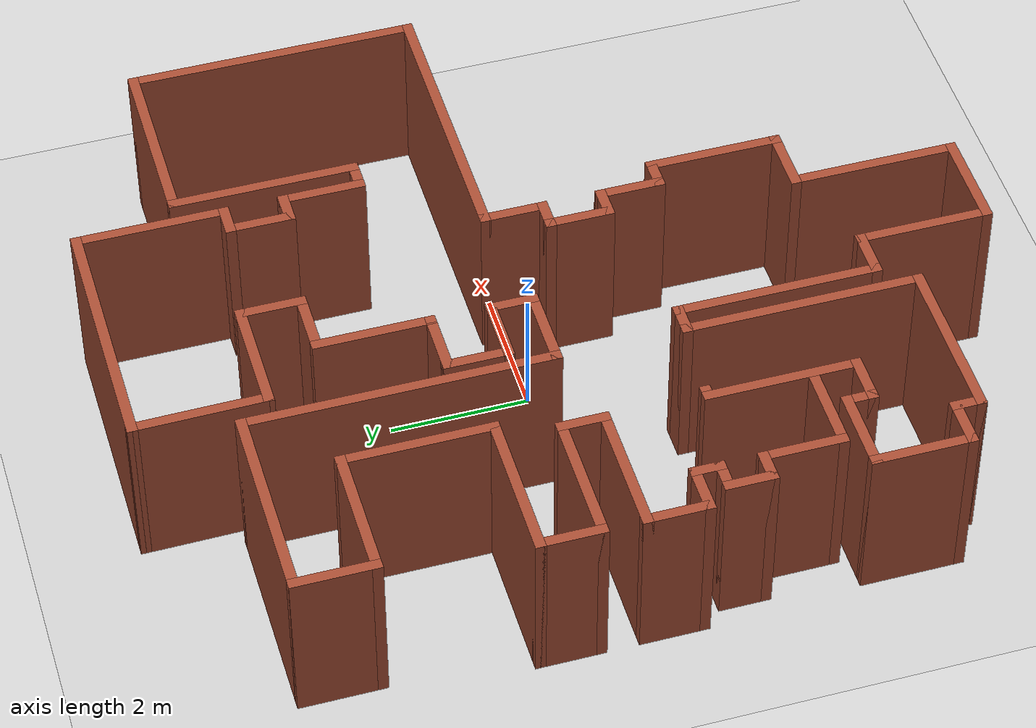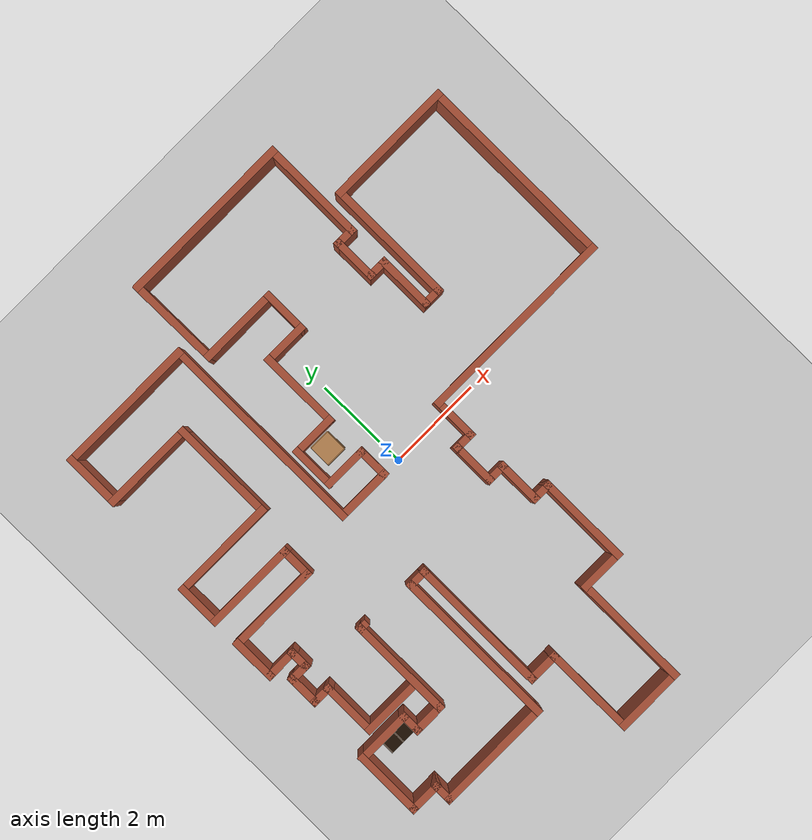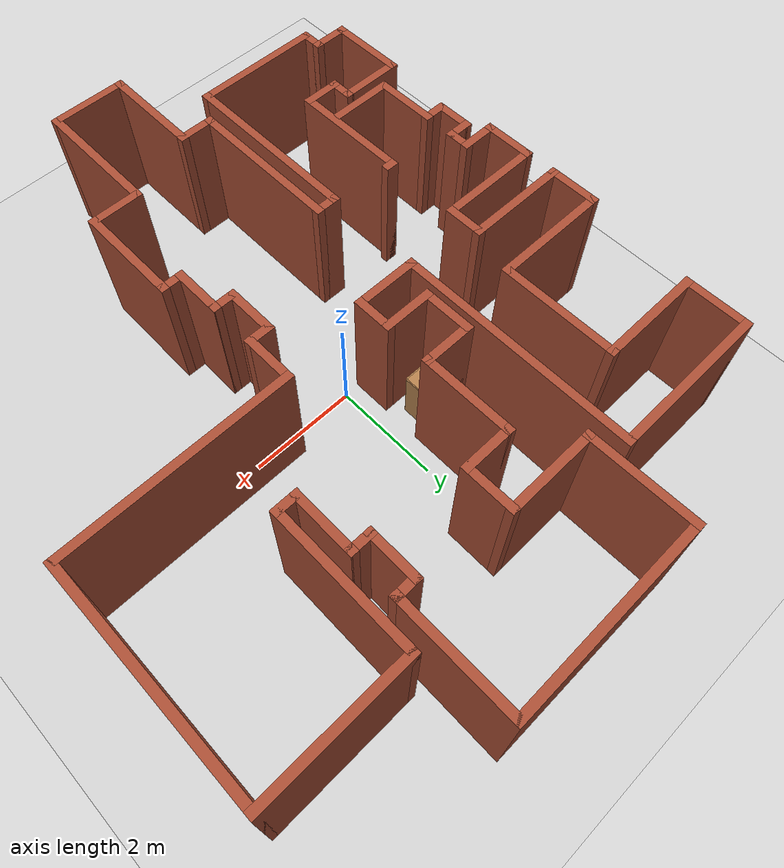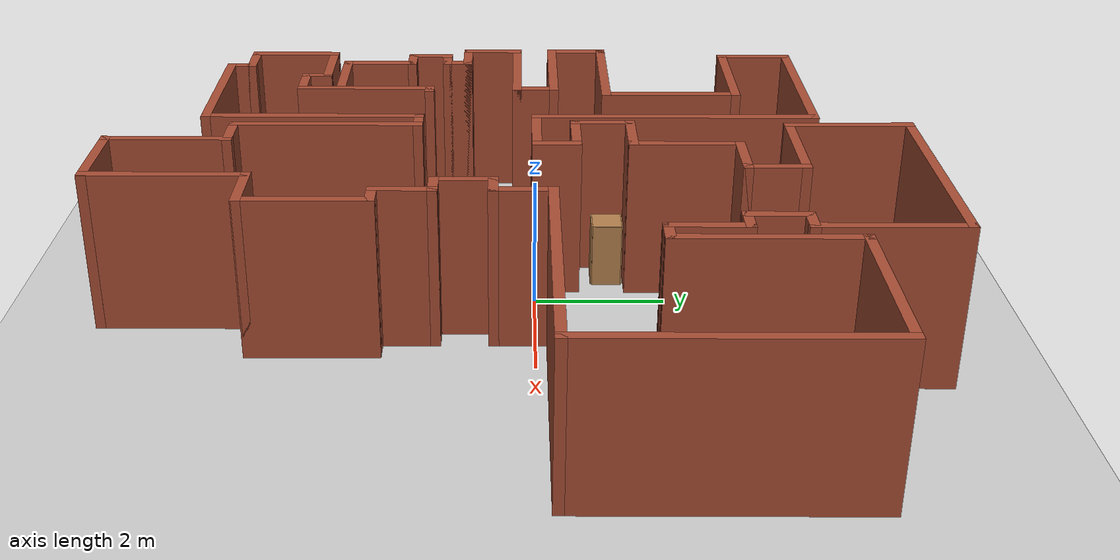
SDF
<sdf version="1.6">
 <world name="default">
  <light name="sun" type="directional">
   <pose>0 0 10 0 -0 0</pose>
   <diffuse>0.8 0.8 0.8 1</diffuse>
   <specular>0.2 0.2 0.2 1</specular>
   <attenuation>
    <range>1000</range>
    <constant>0.9</constant>
    <linear>0.01</linear>
    <quadratic>0.001</quadratic>
   </attenuation>
   <direction>-0.5 0.1 -0.9</direction>
  </light>
  <model name="ground_plane">
   <static>1</static>
   <link name="link">
    <collision name="collision">
     <geometry><plane><normal>0 0 1</normal><size>100 100</size></plane></geometry>
     <surface>
      <contact><collide_bitmask>65535</collide_bitmask></contact>
      <friction><ode><mu>100</mu><mu2>50</mu2></ode></friction>
     </surface>
    </collision>
    <visual name="visual">
     <cast_shadows>0</cast_shadows>
     <geometry><plane><normal>0 0 1</normal><size>100 100</size></plane></geometry>
     <material>
      <script><uri>file://media/materials/scripts/gazebo.material</uri><name>Gazebo/Grey</name></script>
     </material>
    </visual>
   </link>
  </model>
  <gravity>0 0 -9.8</gravity>
  <magnetic_field>6e-06 2.3e-05 -4.2e-05</magnetic_field>
  <atmosphere type="adiabatic"/>
  <physics name="default_physics" default="0" type="ode">
   <max_step_size>0.001</max_step_size>
   <real_time_factor>1</real_time_factor>
   <real_time_update_rate>1000</real_time_update_rate>
  </physics>
  <scene><ambient>0.4 0.4 0.4 1</ambient><background>0.7 0.7 0.7 1</background><shadows>1</shadows></scene>
  <audio><device>default</device></audio>
  <spherical_coordinates>
   <surface_model>EARTH_WGS84</surface_model>
   <latitude_deg>0</latitude_deg>
   <longitude_deg>0</longitude_deg>
   <elevation>0</elevation>
   <heading_deg>0</heading_deg>
  </spherical_coordinates>
  <model name="map_62">
   <pose>0.411872 -0.35758 0 0 -0 0</pose>
   <link name="Wall_0">
    <collision name="Wall_0_Collision">
     <geometry><box><size>3.75 0.15 2.5</size></box></geometry>
     <pose>0 0 1.25 0 -0 0</pose>
    </collision>
    <visual name="Wall_0_Visual">
     <pose>0 0 1.25 0 -0 0</pose>
     <geometry><box><size>3.75 0.15 2.5</size></box></geometry>
     <material>
      <script><uri>file://media/materials/scripts/gazebo.material</uri><name>Gazebo/Bricks</name></script>
      <ambient>1 1 1 1</ambient>
     </material>
     <meta><layer>0</layer></meta>
    </visual>
    <pose>0.239507 6.14958 0 0 -0 0</pose>
   </link>
   <link name="Wall_1">
    <collision name="Wall_1_Collision">
     <geometry><box><size>2.25 0.15 2.5</size></box></geometry>
     <pose>0 0 1.25 0 -0 0</pose>
    </collision>
    <visual name="Wall_1_Visual">
     <pose>0 0 1.25 0 -0 0</pose>
     <geometry><box><size>2.25 0.15 2.5</size></box></geometry>
     <material>
      <script><uri>file://media/materials/scripts/gazebo.material</uri><name>Gazebo/Bricks</name></script>
      <ambient>1 1 1 1</ambient>
     </material>
     <meta><layer>0</layer></meta>
    </visual>
    <pose>2.03951 5.09958 0 0 -0 -1.5708</pose>
   </link>
   <link name="Wall_10">
    <collision name="Wall_10_Collision">
     <geometry><box><size>4.25 0.15 2.5</size></box></geometry>
     <pose>0 0 1.25 0 -0 0</pose>
    </collision>
    <visual name="Wall_10_Visual">
     <pose>0 0 1.25 0 -0 0</pose>
     <geometry><box><size>4.25 0.15 2.5</size></box></geometry>
     <material>
      <script><uri>file://media/materials/scripts/gazebo.material</uri><name>Gazebo/Bricks</name></script>
      <ambient>1 1 1 1</ambient>
     </material>
     <meta><layer>0</layer></meta>
    </visual>
    <pose>2.93951 0.59958 0 0 -0 3.14159</pose>
   </link>
   <link name="Wall_11">
    <collision name="Wall_11_Collision">
     <geometry><box><size>1 0.15 2.5</size></box></geometry>
     <pose>0 0 1.25 0 -0 0</pose>
    </collision>
    <visual name="Wall_11_Visual">
     <pose>0 0 1.25 0 -0 0</pose>
     <geometry><box><size>1 0.15 2.5</size></box></geometry>
     <material>
      <script><uri>file://media/materials/scripts/gazebo.material</uri><name>Gazebo/Bricks</name></script>
      <ambient>1 1 1 1</ambient>
     </material>
     <meta><layer>0</layer></meta>
    </visual>
    <pose>0.889506 0.17458 0 0 -0 -1.5708</pose>
   </link>
   <link name="Wall_12">
    <collision name="Wall_12_Collision">
     <geometry><box><size>0.5 0.15 2.5</size></box></geometry>
     <pose>0 0 1.25 0 -0 0</pose>
    </collision>
    <visual name="Wall_12_Visual">
     <pose>0 0 1.25 0 -0 0</pose>
     <geometry><box><size>0.5 0.15 2.5</size></box></geometry>
     <material>
      <script><uri>file://media/materials/scripts/gazebo.material</uri><name>Gazebo/Bricks</name></script>
      <ambient>1 1 1 1</ambient>
     </material>
     <meta><layer>0</layer></meta>
    </visual>
    <pose>0.714507 -0.25042 0 0 -0 3.14159</pose>
   </link>
   <link name="Wall_13">
    <collision name="Wall_13_Collision">
     <geometry><box><size>1 0.15 2.5</size></box></geometry>
     <pose>0 0 1.25 0 -0 0</pose>
    </collision>
    <visual name="Wall_13_Visual">
     <pose>0 0 1.25 0 -0 0</pose>
     <geometry><box><size>1 0.15 2.5</size></box></geometry>
     <material>
      <script><uri>file://media/materials/scripts/gazebo.material</uri><name>Gazebo/Bricks</name></script>
      <ambient>1 1 1 1</ambient>
     </material>
     <meta><layer>0</layer></meta>
    </visual>
    <pose>0.539506 -0.67542 0 0 -0 -1.5708</pose>
   </link>
   <link name="Wall_14">
    <collision name="Wall_14_Collision">
     <geometry><box><size>0.5 0.15 2.5</size></box></geometry>
     <pose>0 0 1.25 0 -0 0</pose>
    </collision>
    <visual name="Wall_14_Visual">
     <pose>0 0 1.25 0 -0 0</pose>
     <geometry><box><size>0.5 0.15 2.5</size></box></geometry>
     <material>
      <script><uri>file://media/materials/scripts/gazebo.material</uri><name>Gazebo/Bricks</name></script>
      <ambient>1 1 1 1</ambient>
     </material>
     <meta><layer>0</layer></meta>
    </visual>
    <pose>0.714507 -1.10042 0 0 -0 0</pose>
   </link>
   <link name="Wall_15">
    <collision name="Wall_15_Collision">
     <geometry><box><size>1 0.15 2.5</size></box></geometry>
     <pose>0 0 1.25 0 -0 0</pose>
    </collision>
    <visual name="Wall_15_Visual">
     <pose>0 0 1.25 0 -0 0</pose>
     <geometry><box><size>1 0.15 2.5</size></box></geometry>
     <material>
      <script><uri>file://media/materials/scripts/gazebo.material</uri><name>Gazebo/Bricks</name></script>
      <ambient>1 1 1 1</ambient>
     </material>
     <meta><layer>0</layer></meta>
    </visual>
    <pose>0.889506 -1.52542 0 0 -0 -1.5708</pose>
   </link>
   <link name="Wall_16">
    <collision name="Wall_16_Collision">
     <geometry><box><size>0.5 0.15 2.5</size></box></geometry>
     <pose>0 0 1.25 0 -0 0</pose>
    </collision>
    <visual name="Wall_16_Visual">
     <pose>0 0 1.25 0 -0 0</pose>
     <geometry><box><size>0.5 0.15 2.5</size></box></geometry>
     <material>
      <script><uri>file://media/materials/scripts/gazebo.material</uri><name>Gazebo/Bricks</name></script>
      <ambient>1 1 1 1</ambient>
     </material>
     <meta><layer>0</layer></meta>
    </visual>
    <pose>1.06451 -1.95042 0 0 -0 0</pose>
   </link>
   <link name="Wall_17">
    <collision name="Wall_17_Collision">
     <geometry><box><size>2 0.15 2.5</size></box></geometry>
     <pose>0 0 1.25 0 -0 0</pose>
    </collision>
    <visual name="Wall_17_Visual">
     <pose>0 0 1.25 0 -0 0</pose>
     <geometry><box><size>2 0.15 2.5</size></box></geometry>
     <material>
      <script><uri>file://media/materials/scripts/gazebo.material</uri><name>Gazebo/Bricks</name></script>
      <ambient>1 1 1 1</ambient>
     </material>
     <meta><layer>0</layer></meta>
    </visual>
    <pose>1.23951 -2.87542 0 0 -0 -1.5708</pose>
   </link>
   <link name="Wall_18">
    <collision name="Wall_18_Collision">
     <geometry><box><size>1 0.15 2.5</size></box></geometry>
     <pose>0 0 1.25 0 -0 0</pose>
    </collision>
    <visual name="Wall_18_Visual">
     <pose>0 0 1.25 0 -0 0</pose>
     <geometry><box><size>1 0.15 2.5</size></box></geometry>
     <material>
      <script><uri>file://media/materials/scripts/gazebo.material</uri><name>Gazebo/Bricks</name></script>
      <ambient>1 1 1 1</ambient>
     </material>
     <meta><layer>0</layer></meta>
    </visual>
    <pose>0.814506 -3.80042 0 0 -0 3.14159</pose>
   </link>
   <link name="Wall_19">
    <collision name="Wall_19_Collision">
     <geometry><box><size>2.5 0.15 2.5</size></box></geometry>
     <pose>0 0 1.25 0 -0 0</pose>
    </collision>
    <visual name="Wall_19_Visual">
     <pose>0 0 1.25 0 -0 0</pose>
     <geometry><box><size>2.5 0.15 2.5</size></box></geometry>
     <material>
      <script><uri>file://media/materials/scripts/gazebo.material</uri><name>Gazebo/Bricks</name></script>
      <ambient>1 1 1 1</ambient>
     </material>
     <meta><layer>0</layer></meta>
    </visual>
    <pose>0.389506 -4.97542 0 0 -0 -1.5708</pose>
   </link>
   <link name="Wall_2">
    <collision name="Wall_2_Collision">
     <geometry><box><size>0.5 0.15 2.5</size></box></geometry>
     <pose>0 0 1.25 0 -0 0</pose>
    </collision>
    <visual name="Wall_2_Visual">
     <pose>0 0 1.25 0 -0 0</pose>
     <geometry><box><size>0.5 0.15 2.5</size></box></geometry>
     <material>
      <script><uri>file://media/materials/scripts/gazebo.material</uri><name>Gazebo/Bricks</name></script>
      <ambient>1 1 1 1</ambient>
     </material>
     <meta><layer>0</layer></meta>
    </visual>
    <pose>1.86451 4.04958 0 0 -0 3.14159</pose>
   </link>
   <link name="Wall_20">
    <collision name="Wall_20_Collision">
     <geometry><box><size>1.5 0.15 2.5</size></box></geometry>
     <pose>0 0 1.25 0 -0 0</pose>
    </collision>
    <visual name="Wall_20_Visual">
     <pose>0 0 1.25 0 -0 0</pose>
     <geometry><box><size>1.5 0.15 2.5</size></box></geometry>
     <material>
      <script><uri>file://media/materials/scripts/gazebo.material</uri><name>Gazebo/Bricks</name></script>
      <ambient>1 1 1 1</ambient>
     </material>
     <meta><layer>0</layer></meta>
    </visual>
    <pose>-0.285493 -6.15042 0 0 -0 3.14159</pose>
   </link>
   <link name="Wall_21">
    <collision name="Wall_21_Collision">
     <geometry><box><size>2 0.15 2.5</size></box></geometry>
     <pose>0 0 1.25 0 -0 0</pose>
    </collision>
    <visual name="Wall_21_Visual">
     <pose>0 0 1.25 0 -0 0</pose>
     <geometry><box><size>2 0.15 2.5</size></box></geometry>
     <material>
      <script><uri>file://media/materials/scripts/gazebo.material</uri><name>Gazebo/Bricks</name></script>
      <ambient>1 1 1 1</ambient>
     </material>
     <meta><layer>0</layer></meta>
    </visual>
    <pose>-0.960494 -5.22542 0 0 -0 1.5708</pose>
   </link>
   <link name="Wall_22">
    <collision name="Wall_22_Collision">
     <geometry><box><size>0.75 0.15 2.5</size></box></geometry>
     <pose>0 0 1.25 0 -0 0</pose>
    </collision>
    <visual name="Wall_22_Visual">
     <pose>0 0 1.25 0 -0 0</pose>
     <geometry><box><size>0.75 0.15 2.5</size></box></geometry>
     <material>
      <script><uri>file://media/materials/scripts/gazebo.material</uri><name>Gazebo/Bricks</name></script>
      <ambient>1 1 1 1</ambient>
     </material>
     <meta><layer>0</layer></meta>
    </visual>
    <pose>-1.26049 -4.30042 0 0 -0 3.14159</pose>
   </link>
   <link name="Wall_23">
    <collision name="Wall_23_Collision">
     <geometry><box><size>3 0.15 2.5</size></box></geometry>
     <pose>0 0 1.25 0 -0 0</pose>
    </collision>
    <visual name="Wall_23_Visual">
     <pose>0 0 1.25 0 -0 0</pose>
     <geometry><box><size>3 0.15 2.5</size></box></geometry>
     <material>
      <script><uri>file://media/materials/scripts/gazebo.material</uri><name>Gazebo/Bricks</name></script>
      <ambient>1 1 1 1</ambient>
     </material>
     <meta><layer>0</layer></meta>
    </visual>
    <pose>-1.56049 -2.87542 0 0 -0 1.5708</pose>
   </link>
   <link name="Wall_26">
    <collision name="Wall_26_Collision">
     <geometry><box><size>0.5 0.15 2.5</size></box></geometry>
     <pose>0 0 1.25 0 -0 0</pose>
    </collision>
    <visual name="Wall_26_Visual">
     <pose>0 0 1.25 0 -0 0</pose>
     <geometry><box><size>0.5 0.15 2.5</size></box></geometry>
     <material>
      <script><uri>file://media/materials/scripts/gazebo.material</uri><name>Gazebo/Bricks</name></script>
      <ambient>1 1 1 1</ambient>
     </material>
     <meta><layer>0</layer></meta>
    </visual>
    <pose>-1.73549 -1.45042 0 0 -0 3.14159</pose>
   </link>
   <link name="Wall_27">
    <collision name="Wall_27_Collision">
     <geometry><box><size>3.5 0.15 2.5</size></box></geometry>
     <pose>0 0 1.25 0 -0 0</pose>
    </collision>
    <visual name="Wall_27_Visual">
     <pose>0 0 1.25 0 -0 0</pose>
     <geometry><box><size>3.5 0.15 2.5</size></box></geometry>
     <material>
      <script><uri>file://media/materials/scripts/gazebo.material</uri><name>Gazebo/Bricks</name></script>
      <ambient>1 1 1 1</ambient>
     </material>
     <meta><layer>0</layer></meta>
    </visual>
    <pose>-1.91049 -3.12542 0 0 -0 -1.5708</pose>
   </link>
   <link name="Wall_28">
    <collision name="Wall_28_Collision">
     <geometry><box><size>2.5 0.15 2.5</size></box></geometry>
     <pose>0 0 1.25 0 -0 0</pose>
    </collision>
    <visual name="Wall_28_Visual">
     <pose>0 0 1.25 0 -0 0</pose>
     <geometry><box><size>2.5 0.15 2.5</size></box></geometry>
     <material>
      <script><uri>file://media/materials/scripts/gazebo.material</uri><name>Gazebo/Bricks</name></script>
      <ambient>1 1 1 1</ambient>
     </material>
     <meta><layer>0</layer></meta>
    </visual>
    <pose>-3.08549 -4.80042 0 0 -0 3.14159</pose>
   </link>
   <link name="Wall_29">
    <collision name="Wall_29_Collision">
     <geometry><box><size>0.5 0.15 2.5</size></box></geometry>
     <pose>0 0 1.25 0 -0 0</pose>
    </collision>
    <visual name="Wall_29_Visual">
     <pose>0 0 1.25 0 -0 0</pose>
     <geometry><box><size>0.5 0.15 2.5</size></box></geometry>
     <material>
      <script><uri>file://media/materials/scripts/gazebo.material</uri><name>Gazebo/Bricks</name></script>
      <ambient>1 1 1 1</ambient>
     </material>
     <meta><layer>0</layer></meta>
    </visual>
    <pose>-4.26049 -4.62542 0 0 -0 1.5708</pose>
   </link>
   <link name="Wall_3">
    <collision name="Wall_3_Collision">
     <geometry><box><size>1 0.15 2.5</size></box></geometry>
     <pose>0 0 1.25 0 -0 0</pose>
    </collision>
    <visual name="Wall_3_Visual">
     <pose>0 0 1.25 0 -0 0</pose>
     <geometry><box><size>1 0.15 2.5</size></box></geometry>
     <material>
      <script><uri>file://media/materials/scripts/gazebo.material</uri><name>Gazebo/Bricks</name></script>
      <ambient>1 1 1 1</ambient>
     </material>
     <meta><layer>0</layer></meta>
    </visual>
    <pose>1.68951 3.62458 0 0 -0 -1.5708</pose>
   </link>
   <link name="Wall_30">
    <collision name="Wall_30_Collision">
     <geometry><box><size>0.75 0.15 2.5</size></box></geometry>
     <pose>0 0 1.25 0 -0 0</pose>
    </collision>
    <visual name="Wall_30_Visual">
     <pose>0 0 1.25 0 -0 0</pose>
     <geometry><box><size>0.75 0.15 2.5</size></box></geometry>
     <material>
      <script><uri>file://media/materials/scripts/gazebo.material</uri><name>Gazebo/Bricks</name></script>
      <ambient>1 1 1 1</ambient>
     </material>
     <meta><layer>0</layer></meta>
    </visual>
    <pose>-4.56049 -4.45042 0 0 -0 3.14159</pose>
   </link>
   <link name="Wall_31">
    <collision name="Wall_31_Collision">
     <geometry><box><size>1.5 0.15 2.5</size></box></geometry>
     <pose>0 0 1.25 0 -0 0</pose>
    </collision>
    <visual name="Wall_31_Visual">
     <pose>0 0 1.25 0 -0 0</pose>
     <geometry><box><size>1.5 0.15 2.5</size></box></geometry>
     <material>
      <script><uri>file://media/materials/scripts/gazebo.material</uri><name>Gazebo/Bricks</name></script>
      <ambient>1 1 1 1</ambient>
     </material>
     <meta><layer>0</layer></meta>
    </visual>
    <pose>-4.86049 -3.77542 0 0 -0 1.5708</pose>
   </link>
   <link name="Wall_32">
    <collision name="Wall_32_Collision">
     <geometry><box><size>1.25 0.15 2.5</size></box></geometry>
     <pose>0 0 1.25 0 -0 0</pose>
    </collision>
    <visual name="Wall_32_Visual">
     <pose>0 0 1.25 0 -0 0</pose>
     <geometry><box><size>1.25 0.15 2.5</size></box></geometry>
     <material>
      <script><uri>file://media/materials/scripts/gazebo.material</uri><name>Gazebo/Bricks</name></script>
      <ambient>1 1 1 1</ambient>
     </material>
     <meta><layer>0</layer></meta>
    </visual>
    <pose>-4.31049 -3.10042 0 0 -0 0</pose>
   </link>
   <link name="Wall_33">
    <collision name="Wall_33_Collision">
     <geometry><box><size>0.5 0.15 2.5</size></box></geometry>
     <pose>0 0 1.25 0 -0 0</pose>
    </collision>
    <visual name="Wall_33_Visual">
     <pose>0 0 1.25 0 -0 0</pose>
     <geometry><box><size>0.5 0.15 2.5</size></box></geometry>
     <material>
      <script><uri>file://media/materials/scripts/gazebo.material</uri><name>Gazebo/Bricks</name></script>
      <ambient>1 1 1 1</ambient>
     </material>
     <meta><layer>0</layer></meta>
    </visual>
    <pose>-3.76049 -3.27542 0 0 -0 -1.5708</pose>
   </link>
   <link name="Wall_34">
    <collision name="Wall_34_Collision">
     <geometry><box><size>0.75 0.15 2.5</size></box></geometry>
     <pose>0 0 1.25 0 -0 0</pose>
    </collision>
    <visual name="Wall_34_Visual">
     <pose>0 0 1.25 0 -0 0</pose>
     <geometry><box><size>0.75 0.15 2.5</size></box></geometry>
     <material>
      <script><uri>file://media/materials/scripts/gazebo.material</uri><name>Gazebo/Bricks</name></script>
      <ambient>1 1 1 1</ambient>
     </material>
     <meta><layer>0</layer></meta>
    </visual>
    <pose>-3.46049 -3.45042 0 0 -0 0</pose>
   </link>
   <link name="Wall_4">
    <collision name="Wall_4_Collision">
     <geometry><box><size>0.5 0.15 2.5</size></box></geometry>
     <pose>0 0 1.25 0 -0 0</pose>
    </collision>
    <visual name="Wall_4_Visual">
     <pose>0 0 1.25 0 -0 0</pose>
     <geometry><box><size>0.5 0.15 2.5</size></box></geometry>
     <material>
      <script><uri>file://media/materials/scripts/gazebo.material</uri><name>Gazebo/Bricks</name></script>
      <ambient>1 1 1 1</ambient>
     </material>
     <meta><layer>0</layer></meta>
    </visual>
    <pose>1.86451 3.19958 0 0 -0 0</pose>
   </link>
   <link name="Wall_47">
    <collision name="Wall_47_Collision">
     <geometry><box><size>2.25 0.15 2.5</size></box></geometry>
     <pose>0 0 1.25 0 -0 0</pose>
    </collision>
    <visual name="Wall_47_Visual">
     <pose>0 0 1.25 0 -0 0</pose>
     <geometry><box><size>2.25 0.15 2.5</size></box></geometry>
     <material>
      <script><uri>file://media/materials/scripts/gazebo.material</uri><name>Gazebo/Bricks</name></script>
      <ambient>1 1 1 1</ambient>
     </material>
     <meta><layer>0</layer></meta>
    </visual>
    <pose>-3.16049 -2.40042 0 0 -0 1.5708</pose>
   </link>
   <link name="Wall_48">
    <collision name="Wall_48_Collision">
     <geometry><box><size>0.25 0.15 2.5</size></box></geometry>
     <pose>0 0 1.25 0 -0 0</pose>
    </collision>
    <visual name="Wall_48_Visual">
     <pose>0 0 1.25 0 -0 0</pose>
     <geometry><box><size>0.25 0.15 2.5</size></box></geometry>
     <material>
      <script><uri>file://media/materials/scripts/gazebo.material</uri><name>Gazebo/Bricks</name></script>
      <ambient>1 1 1 1</ambient>
     </material>
     <meta><layer>0</layer></meta>
    </visual>
    <pose>-3.11049 -1.35042 0 0 -0 0</pose>
   </link>
   <link name="Wall_50">
    <collision name="Wall_50_Collision">
     <geometry><box><size>1.25 0.15 2.5</size></box></geometry>
     <pose>0 0 1.25 0 -0 0</pose>
    </collision>
    <visual name="Wall_50_Visual">
     <pose>0 0 1.25 0 -0 0</pose>
     <geometry><box><size>1.25 0.15 2.5</size></box></geometry>
     <material>
      <script><uri>file://media/materials/scripts/gazebo.material</uri><name>Gazebo/Bricks</name></script>
      <ambient>1 1 1 1</ambient>
     </material>
     <meta><layer>0</layer></meta>
    </visual>
    <pose>-3.83951 -2.81469 0 0 -0 3.14159</pose>
   </link>
   <link name="Wall_51">
    <collision name="Wall_51_Collision">
     <geometry><box><size>1.25 0.15 2.5</size></box></geometry>
     <pose>0 0 1.25 0 -0 0</pose>
    </collision>
    <visual name="Wall_51_Visual">
     <pose>0 0 1.25 0 -0 0</pose>
     <geometry><box><size>1.25 0.15 2.5</size></box></geometry>
     <material>
      <script><uri>file://media/materials/scripts/gazebo.material</uri><name>Gazebo/Bricks</name></script>
      <ambient>1 1 1 1</ambient>
     </material>
     <meta><layer>0</layer></meta>
    </visual>
    <pose>-4.38951 -2.26469 0 0 -0 1.5708</pose>
   </link>
   <link name="Wall_52">
    <collision name="Wall_52_Collision">
     <geometry><box><size>0.5 0.15 2.5</size></box></geometry>
     <pose>0 0 1.25 0 -0 0</pose>
    </collision>
    <visual name="Wall_52_Visual">
     <pose>0 0 1.25 0 -0 0</pose>
     <geometry><box><size>0.5 0.15 2.5</size></box></geometry>
     <material>
      <script><uri>file://media/materials/scripts/gazebo.material</uri><name>Gazebo/Bricks</name></script>
      <ambient>1 1 1 1</ambient>
     </material>
     <meta><layer>0</layer></meta>
    </visual>
    <pose>-4.56451 -1.71469 0 0 -0 3.14159</pose>
   </link>
   <link name="Wall_53">
    <collision name="Wall_53_Collision">
     <geometry><box><size>0.75 0.15 2.5</size></box></geometry>
     <pose>0 0 1.25 0 -0 0</pose>
    </collision>
    <visual name="Wall_53_Visual">
     <pose>0 0 1.25 0 -0 0</pose>
     <geometry><box><size>0.75 0.15 2.5</size></box></geometry>
     <material>
      <script><uri>file://media/materials/scripts/gazebo.material</uri><name>Gazebo/Bricks</name></script>
      <ambient>1 1 1 1</ambient>
     </material>
     <meta><layer>0</layer></meta>
    </visual>
    <pose>-4.73951 -1.41469 0 0 -0 1.5708</pose>
   </link>
   <link name="Wall_54">
    <collision name="Wall_54_Collision">
     <geometry><box><size>0.5 0.15 2.5</size></box></geometry>
     <pose>0 0 1.25 0 -0 0</pose>
    </collision>
    <visual name="Wall_54_Visual">
     <pose>0 0 1.25 0 -0 0</pose>
     <geometry><box><size>0.5 0.15 2.5</size></box></geometry>
     <material>
      <script><uri>file://media/materials/scripts/gazebo.material</uri><name>Gazebo/Bricks</name></script>
      <ambient>1 1 1 1</ambient>
     </material>
     <meta><layer>0</layer></meta>
    </visual>
    <pose>-4.56451 -1.11469 0 0 -0 0</pose>
   </link>
   <link name="Wall_55">
    <collision name="Wall_55_Collision">
     <geometry><box><size>0.5 0.15 2.5</size></box></geometry>
     <pose>0 0 1.25 0 -0 0</pose>
    </collision>
    <visual name="Wall_55_Visual">
     <pose>0 0 1.25 0 -0 0</pose>
     <geometry><box><size>0.5 0.15 2.5</size></box></geometry>
     <material>
      <script><uri>file://media/materials/scripts/gazebo.material</uri><name>Gazebo/Bricks</name></script>
      <ambient>1 1 1 1</ambient>
     </material>
     <meta><layer>0</layer></meta>
    </visual>
    <pose>-4.38951 -0.939687 0 0 -0 1.5708</pose>
   </link>
   <link name="Wall_56">
    <collision name="Wall_56_Collision">
     <geometry><box><size>0.75 0.15 2.5</size></box></geometry>
     <pose>0 0 1.25 0 -0 0</pose>
    </collision>
    <visual name="Wall_56_Visual">
     <pose>0 0 1.25 0 -0 0</pose>
     <geometry><box><size>0.75 0.15 2.5</size></box></geometry>
     <material>
      <script><uri>file://media/materials/scripts/gazebo.material</uri><name>Gazebo/Bricks</name></script>
      <ambient>1 1 1 1</ambient>
     </material>
     <meta><layer>0</layer></meta>
    </visual>
    <pose>-4.68951 -0.764687 0 0 -0 3.14159</pose>
   </link>
   <link name="Wall_57">
    <collision name="Wall_57_Collision">
     <geometry><box><size>1 0.15 2.5</size></box></geometry>
     <pose>0 0 1.25 0 -0 0</pose>
    </collision>
    <visual name="Wall_57_Visual">
     <pose>0 0 1.25 0 -0 0</pose>
     <geometry><box><size>1 0.15 2.5</size></box></geometry>
     <material>
      <script><uri>file://media/materials/scripts/gazebo.material</uri><name>Gazebo/Bricks</name></script>
      <ambient>1 1 1 1</ambient>
     </material>
     <meta><layer>0</layer></meta>
    </visual>
    <pose>-4.98951 -0.339687 0 0 -0 1.5708</pose>
   </link>
   <link name="Wall_58">
    <collision name="Wall_58_Collision">
     <geometry><box><size>2 0.15 2.5</size></box></geometry>
     <pose>0 0 1.25 0 -0 0</pose>
    </collision>
    <visual name="Wall_58_Visual">
     <pose>0 0 1.25 0 -0 0</pose>
     <geometry><box><size>2 0.15 2.5</size></box></geometry>
     <material>
      <script><uri>file://media/materials/scripts/gazebo.material</uri><name>Gazebo/Bricks</name></script>
      <ambient>1 1 1 1</ambient>
     </material>
     <meta><layer>0</layer></meta>
    </visual>
    <pose>-4.06451 0.085313 0 0 -0 0</pose>
   </link>
   <link name="Wall_59">
    <collision name="Wall_59_Collision">
     <geometry><box><size>0.75 0.15 2.5</size></box></geometry>
     <pose>0 0 1.25 0 -0 0</pose>
    </collision>
    <visual name="Wall_59_Visual">
     <pose>0 0 1.25 0 -0 0</pose>
     <geometry><box><size>0.75 0.15 2.5</size></box></geometry>
     <material>
      <script><uri>file://media/materials/scripts/gazebo.material</uri><name>Gazebo/Bricks</name></script>
      <ambient>1 1 1 1</ambient>
     </material>
     <meta><layer>0</layer></meta>
    </visual>
    <pose>-3.13951 0.385313 0 0 -0 1.5708</pose>
   </link>
   <link name="Wall_60">
    <collision name="Wall_60_Collision">
     <geometry><box><size>2 0.15 2.5</size></box></geometry>
     <pose>0 0 1.25 0 -0 0</pose>
    </collision>
    <visual name="Wall_60_Visual">
     <pose>0 0 1.25 0 -0 0</pose>
     <geometry><box><size>2 0.15 2.5</size></box></geometry>
     <material>
      <script><uri>file://media/materials/scripts/gazebo.material</uri><name>Gazebo/Bricks</name></script>
      <ambient>1 1 1 1</ambient>
     </material>
     <meta><layer>0</layer></meta>
    </visual>
    <pose>-4.06451 0.685313 0 0 -0 3.14159</pose>
   </link>
   <link name="Wall_61">
    <collision name="Wall_61_Collision">
     <geometry><box><size>1 0.15 2.5</size></box></geometry>
     <pose>0 0 1.25 0 -0 0</pose>
    </collision>
    <visual name="Wall_61_Visual">
     <pose>0 0 1.25 0 -0 0</pose>
     <geometry><box><size>1 0.15 2.5</size></box></geometry>
     <material>
      <script><uri>file://media/materials/scripts/gazebo.material</uri><name>Gazebo/Bricks</name></script>
      <ambient>1 1 1 1</ambient>
     </material>
     <meta><layer>0</layer></meta>
    </visual>
    <pose>-4.98951 1.11031 0 0 -0 1.5708</pose>
   </link>
   <link name="Wall_62">
    <collision name="Wall_62_Collision">
     <geometry><box><size>2.25 0.15 2.5</size></box></geometry>
     <pose>0 0 1.25 0 -0 0</pose>
    </collision>
    <visual name="Wall_62_Visual">
     <pose>0 0 1.25 0 -0 0</pose>
     <geometry><box><size>2.25 0.15 2.5</size></box></geometry>
     <material>
      <script><uri>file://media/materials/scripts/gazebo.material</uri><name>Gazebo/Bricks</name></script>
      <ambient>1 1 1 1</ambient>
     </material>
     <meta><layer>0</layer></meta>
    </visual>
    <pose>-3.93951 1.53531 0 0 -0 0</pose>
   </link>
   <link name="Wall_63">
    <collision name="Wall_63_Collision">
     <geometry><box><size>2.25 0.15 2.5</size></box></geometry>
     <pose>0 0 1.25 0 -0 0</pose>
    </collision>
    <visual name="Wall_63_Visual">
     <pose>0 0 1.25 0 -0 0</pose>
     <geometry><box><size>2.25 0.15 2.5</size></box></geometry>
     <material>
      <script><uri>file://media/materials/scripts/gazebo.material</uri><name>Gazebo/Bricks</name></script>
      <ambient>1 1 1 1</ambient>
     </material>
     <meta><layer>0</layer></meta>
    </visual>
    <pose>-2.88951 2.58531 0 0 -0 1.5708</pose>
   </link>
   <link name="Wall_64">
    <collision name="Wall_64_Collision">
     <geometry><box><size>2 0.15 2.5</size></box></geometry>
     <pose>0 0 1.25 0 -0 0</pose>
    </collision>
    <visual name="Wall_64_Visual">
     <pose>0 0 1.25 0 -0 0</pose>
     <geometry><box><size>2 0.15 2.5</size></box></geometry>
     <material>
      <script><uri>file://media/materials/scripts/gazebo.material</uri><name>Gazebo/Bricks</name></script>
      <ambient>1 1 1 1</ambient>
     </material>
     <meta><layer>0</layer></meta>
    </visual>
    <pose>-3.81451 3.63531 0 0 -0 3.14159</pose>
   </link>
   <link name="Wall_65">
    <collision name="Wall_65_Collision">
     <geometry><box><size>1.25 0.15 2.5</size></box></geometry>
     <pose>0 0 1.25 0 -0 0</pose>
    </collision>
    <visual name="Wall_65_Visual">
     <pose>0 0 1.25 0 -0 0</pose>
     <geometry><box><size>1.25 0.15 2.5</size></box></geometry>
     <material>
      <script><uri>file://media/materials/scripts/gazebo.material</uri><name>Gazebo/Bricks</name></script>
      <ambient>1 1 1 1</ambient>
     </material>
     <meta><layer>0</layer></meta>
    </visual>
    <pose>-4.73951 4.18531 0 0 -0 1.5708</pose>
   </link>
   <link name="Wall_66">
    <collision name="Wall_66_Collision">
     <geometry><box><size>3 0.15 2.5</size></box></geometry>
     <pose>0 0 1.25 0 -0 0</pose>
    </collision>
    <visual name="Wall_66_Visual">
     <pose>0 0 1.25 0 -0 0</pose>
     <geometry><box><size>3 0.15 2.5</size></box></geometry>
     <material>
      <script><uri>file://media/materials/scripts/gazebo.material</uri><name>Gazebo/Bricks</name></script>
      <ambient>1 1 1 1</ambient>
     </material>
     <meta><layer>0</layer></meta>
    </visual>
    <pose>-3.31451 4.73531 0 0 -0 0</pose>
   </link>
   <link name="Wall_67">
    <collision name="Wall_67_Collision">
     <geometry><box><size>4.5 0.15 2.5</size></box></geometry>
     <pose>0 0 1.25 0 -0 0</pose>
    </collision>
    <visual name="Wall_67_Visual">
     <pose>0 0 1.25 0 -0 0</pose>
     <geometry><box><size>4.5 0.15 2.5</size></box></geometry>
     <material>
      <script><uri>file://media/materials/scripts/gazebo.material</uri><name>Gazebo/Bricks</name></script>
      <ambient>1 1 1 1</ambient>
     </material>
     <meta><layer>0</layer></meta>
    </visual>
    <pose>-1.88951 2.56031 0 0 -0 -1.5708</pose>
   </link>
   <link name="Wall_68">
    <collision name="Wall_68_Collision">
     <geometry><box><size>1.25 0.15 2.5</size></box></geometry>
     <pose>0 0 1.25 0 -0 0</pose>
    </collision>
    <visual name="Wall_68_Visual">
     <pose>0 0 1.25 0 -0 0</pose>
     <geometry><box><size>1.25 0.15 2.5</size></box></geometry>
     <material>
      <script><uri>file://media/materials/scripts/gazebo.material</uri><name>Gazebo/Bricks</name></script>
      <ambient>1 1 1 1</ambient>
     </material>
     <meta><layer>0</layer></meta>
    </visual>
    <pose>-1.33951 0.385313 0 0 -0 0</pose>
   </link>
   <link name="Wall_69">
    <collision name="Wall_69_Collision">
     <geometry><box><size>0.75 0.15 2.5</size></box></geometry>
     <pose>0 0 1.25 0 -0 0</pose>
    </collision>
    <visual name="Wall_69_Visual">
     <pose>0 0 1.25 0 -0 0</pose>
     <geometry><box><size>0.75 0.15 2.5</size></box></geometry>
     <material>
      <script><uri>file://media/materials/scripts/gazebo.material</uri><name>Gazebo/Bricks</name></script>
      <ambient>1 1 1 1</ambient>
     </material>
     <meta><layer>0</layer></meta>
    </visual>
    <pose>-0.789507 0.685313 0 0 -0 1.5708</pose>
   </link>
   <link name="Wall_70">
    <collision name="Wall_70_Collision">
     <geometry><box><size>1 0.15 2.5</size></box></geometry>
     <pose>0 0 1.25 0 -0 0</pose>
    </collision>
    <visual name="Wall_70_Visual">
     <pose>0 0 1.25 0 -0 0</pose>
     <geometry><box><size>1 0.15 2.5</size></box></geometry>
     <material>
      <script><uri>file://media/materials/scripts/gazebo.material</uri><name>Gazebo/Bricks</name></script>
      <ambient>1 1 1 1</ambient>
     </material>
     <meta><layer>0</layer></meta>
    </visual>
    <pose>-1.21451 0.985313 0 0 -0 3.14159</pose>
   </link>
   <link name="Wall_71">
    <collision name="Wall_71_Collision">
     <geometry><box><size>1 0.15 2.5</size></box></geometry>
     <pose>0 0 1.25 0 -0 0</pose>
    </collision>
    <visual name="Wall_71_Visual">
     <pose>0 0 1.25 0 -0 0</pose>
     <geometry><box><size>1 0.15 2.5</size></box></geometry>
     <material>
      <script><uri>file://media/materials/scripts/gazebo.material</uri><name>Gazebo/Bricks</name></script>
      <ambient>1 1 1 1</ambient>
     </material>
     <meta><layer>0</layer></meta>
    </visual>
    <pose>-1.63951 1.41031 0 0 -0 1.5708</pose>
   </link>
   <link name="Wall_72">
    <collision name="Wall_72_Collision">
     <geometry><box><size>1 0.15 2.5</size></box></geometry>
     <pose>0 0 1.25 0 -0 0</pose>
    </collision>
    <visual name="Wall_72_Visual">
     <pose>0 0 1.25 0 -0 0</pose>
     <geometry><box><size>1 0.15 2.5</size></box></geometry>
     <material>
      <script><uri>file://media/materials/scripts/gazebo.material</uri><name>Gazebo/Bricks</name></script>
      <ambient>1 1 1 1</ambient>
     </material>
     <meta><layer>0</layer></meta>
    </visual>
    <pose>-1.21451 1.83531 0 0 -0 0</pose>
   </link>
   <link name="Wall_73">
    <collision name="Wall_73_Collision">
     <geometry><box><size>1.75 0.15 2.5</size></box></geometry>
     <pose>0 0 1.25 0 -0 0</pose>
    </collision>
    <visual name="Wall_73_Visual">
     <pose>0 0 1.25 0 -0 0</pose>
     <geometry><box><size>1.75 0.15 2.5</size></box></geometry>
     <material>
      <script><uri>file://media/materials/scripts/gazebo.material</uri><name>Gazebo/Bricks</name></script>
      <ambient>1 1 1 1</ambient>
     </material>
     <meta><layer>0</layer></meta>
    </visual>
    <pose>-0.789507 2.63531 0 0 -0 1.5708</pose>
   </link>
   <link name="Wall_74">
    <collision name="Wall_74_Collision">
     <geometry><box><size>1 0.15 2.5</size></box></geometry>
     <pose>0 0 1.25 0 -0 0</pose>
    </collision>
    <visual name="Wall_74_Visual">
     <pose>0 0 1.25 0 -0 0</pose>
     <geometry><box><size>1 0.15 2.5</size></box></geometry>
     <material>
      <script><uri>file://media/materials/scripts/gazebo.material</uri><name>Gazebo/Bricks</name></script>
      <ambient>1 1 1 1</ambient>
     </material>
     <meta><layer>0</layer></meta>
    </visual>
    <pose>-0.364506 3.43531 0 0 -0 0</pose>
   </link>
   <link name="Wall_75">
    <collision name="Wall_75_Collision">
     <geometry><box><size>1 0.15 2.5</size></box></geometry>
     <pose>0 0 1.25 0 -0 0</pose>
    </collision>
    <visual name="Wall_75_Visual">
     <pose>0 0 1.25 0 -0 0</pose>
     <geometry><box><size>1 0.15 2.5</size></box></geometry>
     <material>
      <script><uri>file://media/materials/scripts/gazebo.material</uri><name>Gazebo/Bricks</name></script>
      <ambient>1 1 1 1</ambient>
     </material>
     <meta><layer>0</layer></meta>
    </visual>
    <pose>0.060493 3.86031 0 0 -0 1.5708</pose>
   </link>
   <link name="Wall_76">
    <collision name="Wall_76_Collision">
     <geometry><box><size>1.75 0.15 2.5</size></box></geometry>
     <pose>0 0 1.25 0 -0 0</pose>
    </collision>
    <visual name="Wall_76_Visual">
     <pose>0 0 1.25 0 -0 0</pose>
     <geometry><box><size>1.75 0.15 2.5</size></box></geometry>
     <material>
      <script><uri>file://media/materials/scripts/gazebo.material</uri><name>Gazebo/Bricks</name></script>
      <ambient>1 1 1 1</ambient>
     </material>
     <meta><layer>0</layer></meta>
    </visual>
    <pose>-0.739506 4.28531 0 0 -0 3.14159</pose>
   </link>
   <link name="Wall_77">
    <collision name="Wall_77_Collision">
     <geometry><box><size>2.01438 0.15 2.5</size></box></geometry>
     <pose>0 0 1.25 0 -0 0</pose>
    </collision>
    <visual name="Wall_77_Visual">
     <pose>0 0 1.25 0 -0 0</pose>
     <geometry><box><size>2.01438 0.15 2.5</size></box></geometry>
     <material>
      <script><uri>file://media/materials/scripts/gazebo.material</uri><name>Gazebo/Bricks</name></script>
      <ambient>1 1 1 1</ambient>
     </material>
     <meta><layer>0</layer></meta>
    </visual>
    <pose>-1.55 5.21745 0 0 -0 1.58205</pose>
   </link>
   <link name="Wall_79">
    <collision name="Wall_79_Collision">
     <geometry><box><size>1.25 0.15 2.5</size></box></geometry>
     <pose>0 0 1.25 0 -0 0</pose>
    </collision>
    <visual name="Wall_79_Visual">
     <pose>0 0 1.25 0 -0 0</pose>
     <geometry><box><size>1.25 0.15 2.5</size></box></geometry>
     <material>
      <script><uri>file://media/materials/scripts/gazebo.material</uri><name>Gazebo/Bricks</name></script>
      <ambient>1 1 1 1</ambient>
     </material>
     <meta><layer>0</layer></meta>
    </visual>
    <pose>2.03951 2.64958 0 0 -0 -1.5708</pose>
   </link>
   <link name="Wall_8">
    <collision name="Wall_8_Collision">
     <geometry><box><size>2.75 0.15 2.5</size></box></geometry>
     <pose>0 0 1.25 0 -0 0</pose>
    </collision>
    <visual name="Wall_8_Visual">
     <pose>0 0 1.25 0 -0 0</pose>
     <geometry><box><size>2.75 0.15 2.5</size></box></geometry>
     <material>
      <script><uri>file://media/materials/scripts/gazebo.material</uri><name>Gazebo/Bricks</name></script>
      <ambient>1 1 1 1</ambient>
     </material>
     <meta><layer>0</layer></meta>
    </visual>
    <pose>3.68951 4.69958 0 0 -0 0</pose>
   </link>
   <link name="Wall_80">
    <collision name="Wall_80_Collision">
     <geometry><box><size>0.5 0.15 2.5</size></box></geometry>
     <pose>0 0 1.25 0 -0 0</pose>
    </collision>
    <visual name="Wall_80_Visual">
     <pose>0 0 1.25 0 -0 0</pose>
     <geometry><box><size>0.5 0.15 2.5</size></box></geometry>
     <material>
      <script><uri>file://media/materials/scripts/gazebo.material</uri><name>Gazebo/Bricks</name></script>
      <ambient>1 1 1 1</ambient>
     </material>
     <meta><layer>0</layer></meta>
    </visual>
    <pose>2.21451 2.09958 0 0 -0 0</pose>
   </link>
   <link name="Wall_81">
    <collision name="Wall_81_Collision">
     <geometry><box><size>2.75 0.15 2.5</size></box></geometry>
     <pose>0 0 1.25 0 -0 0</pose>
    </collision>
    <visual name="Wall_81_Visual">
     <pose>0 0 1.25 0 -0 0</pose>
     <geometry><box><size>2.75 0.15 2.5</size></box></geometry>
     <material>
      <script><uri>file://media/materials/scripts/gazebo.material</uri><name>Gazebo/Bricks</name></script>
      <ambient>1 1 1 1</ambient>
     </material>
     <meta><layer>0</layer></meta>
    </visual>
    <pose>2.38951 3.39958 0 0 -0 1.5708</pose>
   </link>
   <link name="Wall_9">
    <collision name="Wall_9_Collision">
     <geometry><box><size>4.25 0.15 2.5</size></box></geometry>
     <pose>0 0 1.25 0 -0 0</pose>
    </collision>
    <visual name="Wall_9_Visual">
     <pose>0 0 1.25 0 -0 0</pose>
     <geometry><box><size>4.25 0.15 2.5</size></box></geometry>
     <material>
      <script><uri>file://media/materials/scripts/gazebo.material</uri><name>Gazebo/Bricks</name></script>
      <ambient>1 1 1 1</ambient>
     </material>
     <meta><layer>0</layer></meta>
    </visual>
    <pose>4.98951 2.64958 0 0 -0 -1.5708</pose>
   </link>
   <static>1</static>
  </model>
  <model name="6_Cube_StorageE">
   <link name="Wall_0">
    <pose>0 0 0.01 0 -0 0</pose>
    <inertial>
     <mass>1.6201</mass>
     <inertia><ixx>0.0119</ixx><iyy>0.0631</iyy><izz>0.0513</izz><ixy>0</ixy><ixz>0</ixz><iyz>0</iyz></inertia>
    </inertial>
    <collision name="Wall_0_Collision"><geometry><box><size>0.616 0.296 0.02</size></box></geometry></collision>
    <visual name="Wall_0_Visual">
     <geometry><box><size>0.616 0.296 0.02</size></box></geometry>
     <material>
      <script><uri>file://media/materials/scripts/gazebo.material</uri><name>Gazebo/Grey</name></script>
      <ambient>0.105882 0.0509804 0 1</ambient>
     </material>
    </visual>
   </link>
   <joint name="0_2" type="fixed">
    <pose>-0.308 0 0 0 -0 0</pose>
    <parent>Wall_2</parent>
    <child>Wall_0</child>
    <axis>
     <xyz>1 0 0</xyz>
     <use_parent_model_frame>0</use_parent_model_frame>
     <limit><lower>-1e+16</lower><upper>1e+16</upper></limit>
    </axis>
   </joint>
   <joint name="0_12" type="fixed">
    <parent>Wall_12</parent>
    <child>Wall_0</child>
    <axis>
     <xyz>0 0 1</xyz>
     <use_parent_model_frame>0</use_parent_model_frame>
     <limit><lower>-1e+16</lower><upper>1e+16</upper></limit>
    </axis>
   </joint>
   <joint name="0_4" type="fixed">
    <pose>0.308 0 0 0 -0 0</pose>
    <parent>Wall_4</parent>
    <child>Wall_0</child>
    <axis>
     <xyz>1 0 0</xyz>
     <use_parent_model_frame>0</use_parent_model_frame>
     <limit><lower>-1e+16</lower><upper>1e+16</upper></limit>
    </axis>
   </joint>
   <link name="Wall_10">
    <pose>0 0 0.61 0 -0 0</pose>
    <inertial>
     <mass>1.6201</mass>
     <inertia><ixx>0.0119</ixx><iyy>0.0631</iyy><izz>0.0513</izz><ixy>0</ixy><ixz>0</ixz><iyz>0</iyz></inertia>
    </inertial>
    <collision name="Wall_10_Collision"><geometry><box><size>0.616 0.296 0.02</size></box></geometry></collision>
    <visual name="Wall_10_Visual">
     <geometry><box><size>0.616 0.296 0.02</size></box></geometry>
     <material>
      <script><uri>file://media/materials/scripts/gazebo.material</uri><name>Gazebo/Grey</name></script>
      <ambient>0.105882 0.0509804 0 1</ambient>
     </material>
    </visual>
   </link>
   <joint name="10_2" type="fixed">
    <pose>-0.308 0 0 0 -0 0</pose>
    <parent>Wall_2</parent>
    <child>Wall_10</child>
    <axis>
     <xyz>1 0 0</xyz>
     <use_parent_model_frame>0</use_parent_model_frame>
     <limit><lower>-1e+16</lower><upper>1e+16</upper></limit>
    </axis>
   </joint>
   <joint name="10_12" type="fixed">
    <parent>Wall_12</parent>
    <child>Wall_10</child>
    <axis>
     <xyz>0 0 1</xyz>
     <use_parent_model_frame>0</use_parent_model_frame>
     <limit><lower>-1e+16</lower><upper>1e+16</upper></limit>
    </axis>
   </joint>
   <joint name="10_4" type="fixed">
    <pose>0.308 0 0 0 -0 0</pose>
    <parent>Wall_4</parent>
    <child>Wall_10</child>
    <axis>
     <xyz>1 0 0</xyz>
     <use_parent_model_frame>0</use_parent_model_frame>
     <limit><lower>-1e+16</lower><upper>1e+16</upper></limit>
    </axis>
   </joint>
   <link name="Wall_12">
    <pose>0 0 0.4575 0 -0 0</pose>
    <inertial>
     <mass>2.4065</mass>
     <inertia><ixx>0.0177</ixx><iyy>0.1855</iyy><izz>0.168</izz><ixy>0</ixy><ixz>0</ixz><iyz>0</iyz></inertia>
    </inertial>
    <collision name="Wall_12_Collision"><geometry><box><size>0.02 0.296 0.915</size></box></geometry></collision>
    <visual name="Wall_12_Visual">
     <geometry><box><size>0.02 0.296 0.915</size></box></geometry>
     <material>
      <script><uri>file://media/materials/scripts/gazebo.material</uri><name>Gazebo/Grey</name></script>
      <ambient>0.105882 0.0509804 0 1</ambient>
     </material>
    </visual>
   </link>
   <link name="Wall_2">
    <pose>-0.298 0 0.4575 0 -0 0</pose>
    <inertial>
     <mass>2.4065</mass>
     <inertia><ixx>0.0177</ixx><iyy>0.1855</iyy><izz>0.168</izz><ixy>0</ixy><ixz>0</ixz><iyz>0</iyz></inertia>
    </inertial>
    <collision name="Wall_2_Collision"><geometry><box><size>0.02 0.296 0.915</size></box></geometry></collision>
    <visual name="Wall_2_Visual">
     <geometry><box><size>0.02 0.296 0.915</size></box></geometry>
     <material>
      <script><uri>file://media/materials/scripts/gazebo.material</uri><name>Gazebo/Grey</name></script>
      <ambient>0.105882 0.0509804 0 1</ambient>
     </material>
    </visual>
   </link>
   <link name="Wall_4">
    <pose>0.298 0 0.4575 0 -0 0</pose>
    <inertial>
     <mass>2.4065</mass>
     <inertia><ixx>0.0177</ixx><iyy>0.1855</iyy><izz>0.168</izz><ixy>0</ixy><ixz>0</ixz><iyz>0</iyz></inertia>
    </inertial>
    <collision name="Wall_4_Collision"><geometry><box><size>0.02 0.296 0.915</size></box></geometry></collision>
    <visual name="Wall_4_Visual">
     <geometry><box><size>0.02 0.296 0.915</size></box></geometry>
     <material>
      <script><uri>file://media/materials/scripts/gazebo.material</uri><name>Gazebo/Grey</name></script>
      <ambient>0.105882 0.0509804 0 1</ambient>
     </material>
    </visual>
   </link>
   <link name="Wall_6">
    <pose>0 0 0.905 0 -0 0</pose>
    <inertial>
     <mass>1.6201</mass>
     <inertia><ixx>0.0119</ixx><iyy>0.0631</iyy><izz>0.0513</izz><ixy>0</ixy><ixz>0</ixz><iyz>0</iyz></inertia>
    </inertial>
    <collision name="Wall_6_Collision"><geometry><box><size>0.616 0.296 0.02</size></box></geometry></collision>
    <visual name="Wall_6_Visual">
     <geometry><box><size>0.616 0.296 0.02</size></box></geometry>
     <material>
      <script><uri>file://media/materials/scripts/gazebo.material</uri><name>Gazebo/Grey</name></script>
      <ambient>0.105882 0.0509804 0 1</ambient>
     </material>
    </visual>
   </link>
   <joint name="6_2" type="fixed">
    <pose>-0.308 0 0 0 -0 0</pose>
    <parent>Wall_2</parent>
    <child>Wall_6</child>
    <axis>
     <xyz>2 0 0</xyz>
     <use_parent_model_frame>0</use_parent_model_frame>
     <limit><lower>-1e+16</lower><upper>1e+16</upper></limit>
    </axis>
   </joint>
   <joint name="6_12" type="fixed">
    <parent>Wall_12</parent>
    <child>Wall_6</child>
    <axis>
     <xyz>0 0 1</xyz>
     <use_parent_model_frame>0</use_parent_model_frame>
     <limit><lower>-1e+16</lower><upper>1e+16</upper></limit>
    </axis>
   </joint>
   <joint name="6_4" type="fixed">
    <pose>0.308 0 0 0 -0 0</pose>
    <parent>Wall_4</parent>
    <child>Wall_6</child>
    <axis>
     <xyz>1 0 0</xyz>
     <use_parent_model_frame>0</use_parent_model_frame>
     <limit><lower>-1e+16</lower><upper>1e+16</upper></limit>
    </axis>
   </joint>
   <link name="Wall_8">
    <pose>0 0 0.305 0 -0 0</pose>
    <inertial>
     <mass>1.6201</mass>
     <inertia><ixx>0.0119</ixx><iyy>0.0631</iyy><izz>0.0513</izz><ixy>0</ixy><ixz>0</ixz><iyz>0</iyz></inertia>
    </inertial>
    <collision name="Wall_8_Collision"><geometry><box><size>0.616 0.296 0.02</size></box></geometry></collision>
    <visual name="Wall_8_Visual">
     <geometry><box><size>0.616 0.296 0.02</size></box></geometry>
     <material>
      <script><uri>file://media/materials/scripts/gazebo.material</uri><name>Gazebo/Grey</name></script>
      <ambient>0.105882 0.0509804 0 1</ambient>
     </material>
    </visual>
   </link>
   <joint name="8_2" type="fixed">
    <pose>-0.308 0 0 0 -0 0</pose>
    <parent>Wall_2</parent>
    <child>Wall_8</child>
    <axis>
     <xyz>1 0 0</xyz>
     <use_parent_model_frame>0</use_parent_model_frame>
     <limit><lower>-1e+16</lower><upper>1e+16</upper></limit>
    </axis>
   </joint>
   <joint name="8_12" type="fixed">
    <parent>Wall_12</parent>
    <child>Wall_8</child>
    <axis>
     <xyz>0 0 1</xyz>
     <use_parent_model_frame>0</use_parent_model_frame>
     <limit><lower>-1e+16</lower><upper>1e+16</upper></limit>
    </axis>
   </joint>
   <joint name="8_4" type="fixed">
    <pose>0.308 0 0 0 -0 0</pose>
    <parent>Wall_4</parent>
    <child>Wall_8</child>
    <axis>
     <xyz>1 0 0</xyz>
     <use_parent_model_frame>0</use_parent_model_frame>
     <limit><lower>-1e+16</lower><upper>1e+16</upper></limit>
    </axis>
   </joint>
   <static>1</static>
   <pose>-3.75373 -3.71859 0 0 -0 0</pose>
  </model>
  <model name="cabinet">
   <static>1</static>
   <link name="cabinet_bottom_plate">
    <inertial>
     <pose>0 0 -1 0 -0 0</pose>
     <inertia><ixx>2.05</ixx><ixy>0</ixy><ixz>0</ixz><iyy>2.05</iyy><iyz>0</iyz><izz>2.05</izz></inertia>
     <mass>25</mass>
    </inertial>
    <collision name="cabinet_bottom_plate_geom">
     <pose>0 0 0.01 0 -0 0</pose>
     <geometry><box><size>0.45 0.45 0.02</size></box></geometry>
    </collision>
    <visual name="cabinet_bottom_plate_geom_visual">
     <pose>0 0 0.01 0 -0 0</pose>
     <geometry><box><size>0.45 0.45 0.02</size></box></geometry>
     <material>
      <script><uri>file://media/materials/scripts/gazebo.material</uri><name>Gazebo/Wood</name></script>
     </material>
    </visual>
    <collision name="cabinet_bottom_plate_geom_cabinet_back_plate">
     <pose>0.235 0 0.51 0 -0 0</pose>
     <geometry><box><size>0.02 0.45 1.02</size></box></geometry>
    </collision>
    <visual name="cabinet_bottom_plate_geom_cabinet_back_plate_visual">
     <pose>0.235 0 0.51 0 -0 0</pose>
     <geometry><box><size>0.02 0.45 1.02</size></box></geometry>
     <material>
      <script><uri>file://media/materials/scripts/gazebo.material</uri><name>Gazebo/Wood</name></script>
     </material>
    </visual>
    <collision name="cabinet_bottom_plate_geom_cabinet_left_plate">
     <pose>0 0.235 0.51 0 -0 0</pose>
     <geometry><box><size>0.45 0.02 1.02</size></box></geometry>
    </collision>
    <visual name="cabinet_bottom_plate_geom_cabinet_left_plate_visual">
     <pose>0 0.235 0.51 0 -0 0</pose>
     <geometry><box><size>0.45 0.02 1.02</size></box></geometry>
     <material>
      <script><uri>file://media/materials/scripts/gazebo.material</uri><name>Gazebo/Wood</name></script>
     </material>
    </visual>
    <collision name="cabinet_bottom_plate_geom_cabinet_middle_plate">
     <pose>0 0 0.51 0 -0 0</pose>
     <geometry><box><size>0.45 0.45 0.02</size></box></geometry>
    </collision>
    <visual name="cabinet_bottom_plate_geom_cabinet_middle_plate_visual">
     <pose>0 0 0.51 0 -0 0</pose>
     <geometry><box><size>0.45 0.45 0.02</size></box></geometry>
     <material>
      <script><uri>file://media/materials/scripts/gazebo.material</uri><name>Gazebo/Wood</name></script>
     </material>
    </visual>
    <collision name="cabinet_bottom_plate_geom_cabinet_right_plate">
     <pose>0 -0.235 0.51 0 -0 0</pose>
     <geometry><box><size>0.45 0.02 1.02</size></box></geometry>
    </collision>
    <visual name="cabinet_bottom_plate_geom_cabinet_right_plate_visual">
     <pose>0 -0.235 0.51 0 -0 0</pose>
     <geometry><box><size>0.45 0.02 1.02</size></box></geometry>
     <material>
      <script><uri>file://media/materials/scripts/gazebo.material</uri><name>Gazebo/Wood</name></script>
     </material>
    </visual>
    <collision name="cabinet_bottom_plate_geom_cabinet_top_plate">
     <pose>0 0 1.01 0 -0 0</pose>
     <geometry><box><size>0.45 0.45 0.02</size></box></geometry>
    </collision>
    <visual name="cabinet_bottom_plate_geom_cabinet_top_plate_visual">
     <pose>0 0 1.01 0 -0 0</pose>
     <geometry><box><size>0.45 0.45 0.02</size></box></geometry>
     <material>
      <script><uri>file://media/materials/scripts/gazebo.material</uri><name>Gazebo/Wood</name></script>
     </material>
    </visual>
   </link>
   <pose>-0.792676 1.13416 0 0 -0 0</pose>
  </model>
 </world>
</sdf>
